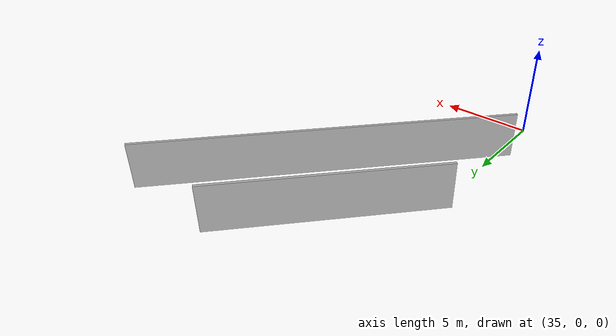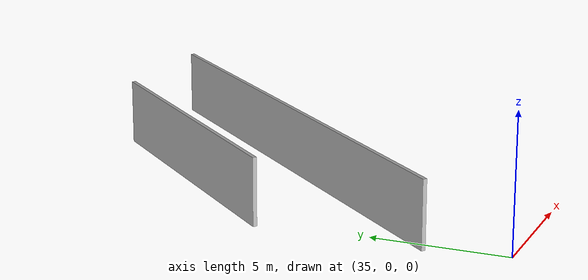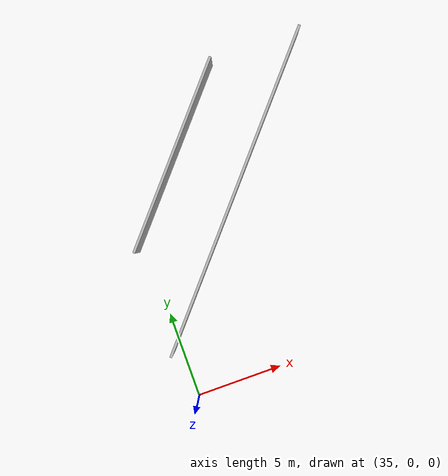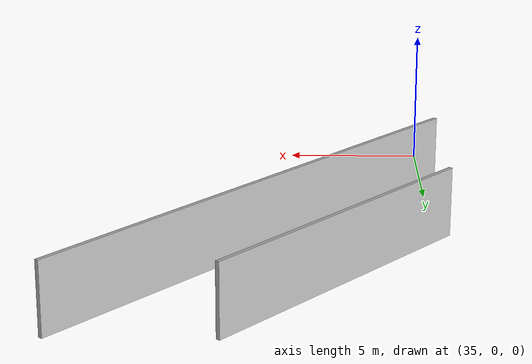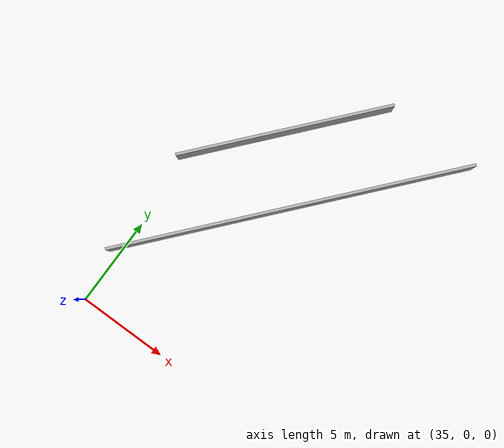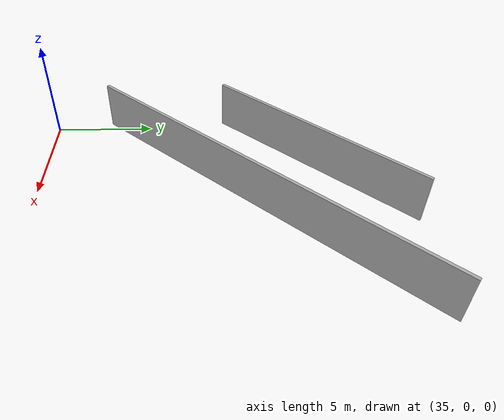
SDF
<?xml version="1.0" ?>
<sdf version="1.6">
  <model name="sps_1447">
    <pose frame="">0 0 0 0 -0 0</pose>
    <static>1</static>
    <self_collide>0</self_collide>
    <allow_auto_disable>0</allow_auto_disable>
    <link name="Wall227">
      <kinematic>0</kinematic>
      <gravity>1</gravity>
      <self_collide>0</self_collide>
      <collision name="collision">
        <geometry>
          <box>
            <size>19.8122 0.15 2.5</size>
          </box>
        </geometry>
        <pose frame="">0 0 0 0 -0 0</pose>
      </collision>
      <visual name="visual">
        <geometry>
          <box>
            <size>19.8122 0.15 2.5</size>
          </box>
        </geometry>
        <pose frame="">0 0 0 0 -0 0</pose>
        <cast_shadows>1</cast_shadows>
        <transparency>0.0</transparency>
      </visual>
      <pose frame="">40.9412 10.3933 1.25 0 0 -2.28275</pose>
    </link>
    <link name="Wall448">
      <kinematic>0</kinematic>
      <gravity>1</gravity>
      <self_collide>0</self_collide>
      <collision name="collision">
        <geometry>
          <box>
            <size>11.7221 0.15 2.5</size>
          </box>
        </geometry>
        <pose frame="">0 0 0 0 -0 0</pose>
      </collision>
      <visual name="visual">
        <geometry>
          <box>
            <size>11.7221 0.15 2.5</size>
          </box>
        </geometry>
        <pose frame="">0 0 0 0 -0 0</pose>
        <cast_shadows>1</cast_shadows>
        <transparency>0.0</transparency>
      </visual>
      <pose frame="">38.2985 13.4557 1.25 0 0 -2.28274</pose>
    </link>
  </model>
</sdf>
